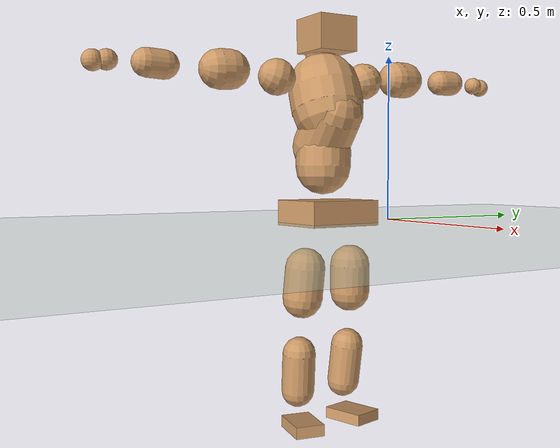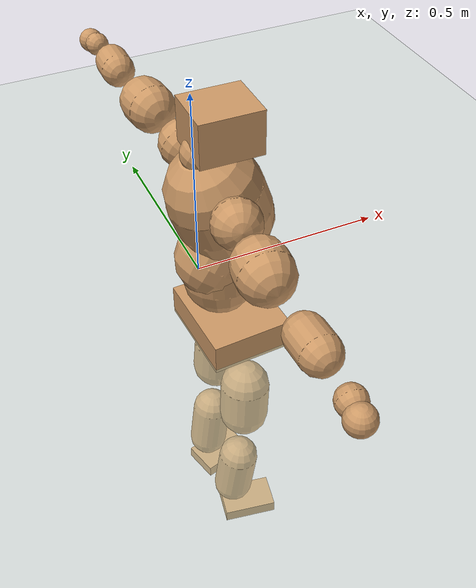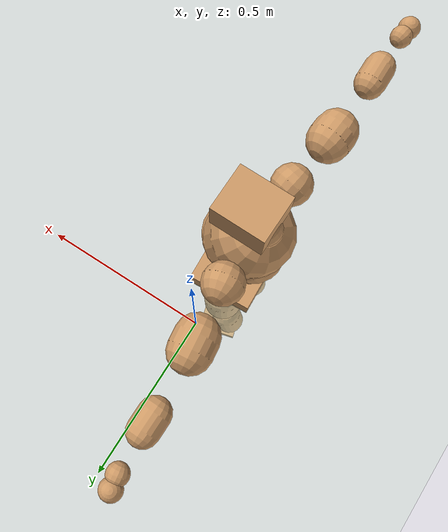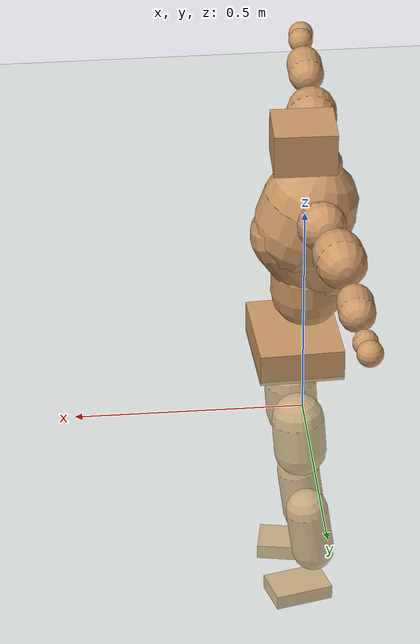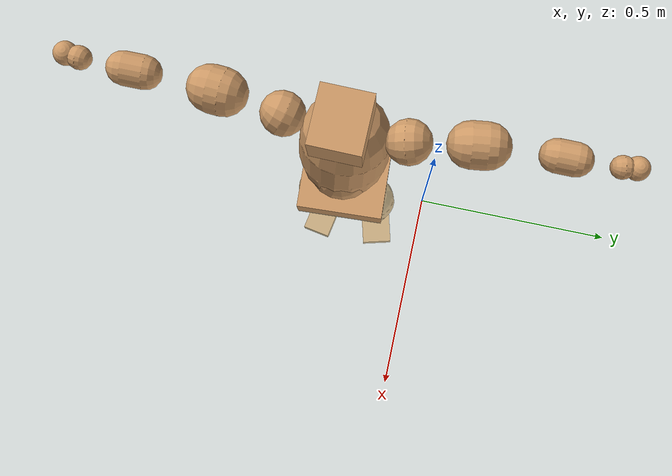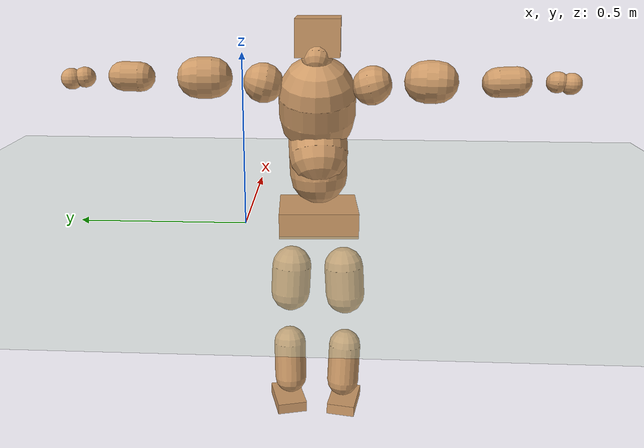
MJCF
<mujoco model="humanoid">
  <compiler coordinate="local" angle="radian"/>
  <default>
    <joint damping="0.0" armature="0.01" stiffness="0.0" limited="true"/>
    <geom conaffinity="1" condim="3" contype="7" margin="0.001" rgba="0.8 0.6 .4 1"/>
  </default>
  <asset>
    <texture type="skybox" builtin="gradient" rgb1=".4 .5 .6" rgb2="0 0 0" width="100" height="100"/>
    <texture builtin="flat" height="1278" mark="cross" markrgb="1 1 1" name="texgeom" random="0.01" rgb1="0.8 0.6 0.4" rgb2="0.8 0.6 0.4" type="cube" width="127"/>
    <texture builtin="checker" height="100" name="texplane" rgb1="0 0 0" rgb2="0.8 0.8 0.8" type="2d" width="100"/>
    <material name="MatPlane" reflectance="0.5" shininess="1" specular="1" texrepeat="60 60" texture="texplane"/>
    <material name="geom" texture="texgeom" texuniform="true"/>
  </asset>
  <worldbody>
    <light cutoff="100" diffuse="1 1 1" dir="-0 0 -1.3" directional="true" exponent="1" pos="0 0 1.3" specular=".1 .1 .1"/>
    <geom conaffinity="1" condim="3" name="floor" pos="0 0 0" rgba="0.8 0.9 0.8 1" size="100 100 .2" type="plane" material="MatPlane"/>
    <body name="Pelvis" pos="-0.0026 -0.2161 0.0394">
      <freejoint name="Pelvis"/>
      <geom type="box" contype="1" conaffinity="1" density="5359.374822" pos="-0.0040 -0.0002 -0.0118" size="0.0947 0.1139 0.0372" quat="0.9997 0.0000 0.0000 0.0249" name="Pelvis"/>
      <body name="L_Hip" pos="0.0016 0.0744 -0.0817">
        <joint name="L_Hip_x" type="hinge" pos="0 0 0" axis="1 0 0" stiffness="1600" damping="160" armature="0.02" range="-180.0000 180.0000"/>
        <joint name="L_Hip_y" type="hinge" pos="0 0 0" axis="0 1 0" stiffness="1600" damping="160" armature="0.02" range="-180.0000 180.0000"/>
        <joint name="L_Hip_z" type="hinge" pos="0 0 0" axis="0 0 1" stiffness="1600" damping="160" armature="0.02" range="-180.0000 180.0000"/>
        <geom type="capsule" contype="1" conaffinity="1" density="2040.816327" size="0.0592" fromto="-0.0061 0.0038 -0.0889 -0.0119 0.0073 -0.1716" name="L_Hip"/>
        <body name="L_Knee" pos="-0.018 0.0111 -0.2604">
          <joint name="L_Knee_x" type="hinge" pos="0 0 0" axis="1 0 0" stiffness="1600" damping="160" armature="0.02" range="-180.0000 180.0000"/>
          <joint name="L_Knee_y" type="hinge" pos="0 0 0" axis="0 1 0" stiffness="1600" damping="160" armature="0.02" range="-180.0000 180.0000"/>
          <joint name="L_Knee_z" type="hinge" pos="0 0 0" axis="0 0 1" stiffness="1600" damping="160" armature="0.02" range="-180.0000 180.0000"/>
          <geom type="capsule" contype="1" conaffinity="1" density="1234.567901" size="0.0486" fromto="-0.0109 -0.0023 -0.0778 -0.0268 -0.0058 -0.1918" name="L_Knee"/>
          <body name="L_Ankle" pos="-0.0376 -0.0081 -0.2697">
            <joint name="L_Ankle_x" type="hinge" pos="0 0 0" axis="1 0 0" stiffness="1600" damping="160" armature="0.02" range="-180.0000 180.0000"/>
            <joint name="L_Ankle_y" type="hinge" pos="0 0 0" axis="0 1 0" stiffness="1600" damping="160" armature="0.02" range="-180.0000 180.0000"/>
            <joint name="L_Ankle_z" type="hinge" pos="0 0 0" axis="0 0 1" stiffness="1600" damping="160" armature="0.02" range="-180.0000 180.0000"/>
            <geom type="box" contype="1" conaffinity="1" density="999.999959" pos="0.0456 0.0119 -0.0207" size="0.0665 0.0457 0.0165" quat="0.9919 0.0000 0.0000 0.1273" name="L_Ankle"/>
            <body name="L_Toe" pos="0.0911 0.0238 -0.0415">
              <joint name="L_Toe_x" type="hinge" pos="0 0 0" axis="1 0 0" stiffness="1000" damping="100" armature="0.02" range="-180.0000 180.0000"/>
              <joint name="L_Toe_y" type="hinge" pos="0 0 0" axis="0 1 0" stiffness="1000" damping="100" armature="0.02" range="-180.0000 180.0000"/>
              <joint name="L_Toe_z" type="hinge" pos="0 0 0" axis="0 0 1" stiffness="1000" damping="100" armature="0.02" range="-180.0000 180.0000"/>
              <geom type="box" contype="1" conaffinity="1" density="6912097.036662" pos="0.0000 0.0000 0.0211" size="0.001 0.0023 0.0008" quat="0.9909 0.0000 0.0000 0.1347" name="L_Toe"/>
            </body>
          </body>
        </body>
      </body>
      <body name="R_Hip" pos="0.0034 -0.0736 -0.083">
        <joint name="R_Hip_x" type="hinge" pos="0 0 0" axis="1 0 0" stiffness="1600" damping="160" armature="0.02" range="-180.0000 180.0000"/>
        <joint name="R_Hip_y" type="hinge" pos="0 0 0" axis="0 1 0" stiffness="1600" damping="160" armature="0.02" range="-180.0000 180.0000"/>
        <joint name="R_Hip_z" type="hinge" pos="0 0 0" axis="0 0 1" stiffness="1600" damping="160" armature="0.02" range="-180.0000 180.0000"/>
        <geom type="capsule" contype="1" conaffinity="1" density="2040.816327" size="0.0587" fromto="-0.0063 -0.0057 -0.0883 -0.0126 -0.0114 -0.1776" name="R_Hip"/>
        <body name="R_Knee" pos="-0.0189 -0.017 -0.2659">
          <joint name="R_Knee_x" type="hinge" pos="0 0 0" axis="1 0 0" stiffness="1600" damping="160" armature="0.02" range="-180.0000 180.0000"/>
          <joint name="R_Knee_y" type="hinge" pos="0 0 0" axis="0 1 0" stiffness="1600" damping="160" armature="0.02" range="-180.0000 180.0000"/>
          <joint name="R_Knee_z" type="hinge" pos="0 0 0" axis="0 0 1" stiffness="1600" damping="160" armature="0.02" range="-180.0000 180.0000"/>
          <geom type="capsule" contype="1" conaffinity="1" density="1234.567901" size="0.0487" fromto="-0.0101 0.0028 -0.0780 -0.0250 0.0069 -0.1929" name="R_Knee"/>
          <body name="R_Ankle" pos="-0.0352 0.0096 -0.271">
            <joint name="R_Ankle_x" type="hinge" pos="0 0 0" axis="1 0 0" stiffness="1600" damping="160" armature="0.02" range="-180.0000 180.0000"/>
            <joint name="R_Ankle_y" type="hinge" pos="0 0 0" axis="0 1 0" stiffness="1600" damping="160" armature="0.02" range="-180.0000 180.0000"/>
            <joint name="R_Ankle_z" type="hinge" pos="0 0 0" axis="0 0 1" stiffness="1600" damping="160" armature="0.02" range="-180.0000 180.0000"/>
            <geom type="box" contype="1" conaffinity="1" density="1000.000016" pos="0.0477 -0.0087 -0.0185" size="0.0667 0.0428 0.0171" quat="0.9959 0.0000 0.0000 -0.0904" name="R_Ankle"/>
            <body name="R_Toe" pos="0.0953 -0.0174 -0.0369">
              <joint name="R_Toe_x" type="hinge" pos="0 0 0" axis="1 0 0" stiffness="1000" damping="100" armature="0.02" range="-180.0000 180.0000"/>
              <joint name="R_Toe_y" type="hinge" pos="0 0 0" axis="0 1 0" stiffness="1000" damping="100" armature="0.02" range="-180.0000 180.0000"/>
              <joint name="R_Toe_z" type="hinge" pos="0 0 0" axis="0 0 1" stiffness="1000" damping="100" armature="0.02" range="-180.0000 180.0000"/>
              <geom type="box" contype="1" conaffinity="1" density="6938292.13253" pos="0.0000 0.0000 0.0208" size="0.001 0.0023 0.001" quat="0.9969 0.0000 0.0000 -0.0786" name="R_Toe"/>
            </body>
          </body>
        </body>
      </body>
      <body name="Torso" pos="-0.0292 -0.002 0.0942">
        <joint name="Torso_x" type="hinge" pos="0 0 0" axis="1 0 0" stiffness="2000" damping="200" armature="0.02" range="-180.0000 180.0000"/>
        <joint name="Torso_y" type="hinge" pos="0 0 0" axis="0 1 0" stiffness="2000" damping="200" armature="0.02" range="-180.0000 180.0000"/>
        <joint name="Torso_z" type="hinge" pos="0 0 0" axis="0 0 1" stiffness="2000" damping="200" armature="0.02" range="-180.0000 180.0000"/>
        <geom type="capsule" contype="1" conaffinity="1" density="2040.816327" size="0.0821" fromto="-0.0009 0.0026 0.0820 -0.0003 0.0009 0.0297" name="Torso"/>
        <body name="Spine" pos="-0.0012 0.0036 0.1118">
          <joint name="Spine_x" type="hinge" pos="0 0 0" axis="1 0 0" stiffness="2000" damping="200" armature="0.02" range="-180.0000 180.0000"/>
          <joint name="Spine_y" type="hinge" pos="0 0 0" axis="0 1 0" stiffness="2000" damping="200" armature="0.02" range="-180.0000 180.0000"/>
          <joint name="Spine_z" type="hinge" pos="0 0 0" axis="0 0 1" stiffness="2000" damping="200" armature="0.02" range="-180.0000 180.0000"/>
          <geom type="capsule" contype="1" conaffinity="1" density="2040.816327" size="0.0836" fromto="0.0468 0.0053 0.0691 -0.0157 -0.0018 -0.0232" name="Spine"/>
          <body name="Chest" pos="0.0311 0.0035 0.0459">
            <joint name="Chest_x" type="hinge" pos="0 0 0" axis="1 0 0" stiffness="2000" damping="200" armature="0.02" range="-180.0000 180.0000"/>
            <joint name="Chest_y" type="hinge" pos="0 0 0" axis="0 1 0" stiffness="2000" damping="200" armature="0.02" range="-180.0000 180.0000"/>
            <joint name="Chest_z" type="hinge" pos="0 0 0" axis="0 0 1" stiffness="2000" damping="200" armature="0.02" range="-180.0000 180.0000"/>
            <geom type="capsule" contype="1" conaffinity="1" density="2040.816327" size="0.1072" fromto="-0.0346 0.0003 0.1015 -0.0136 0.0001 0.0398" name="Chest"/>
            <body name="Neck" pos="-0.0706 0.0016 0.1905">
              <joint name="Neck_x" type="hinge" pos="0 0 0" axis="1 0 0" stiffness="1000" damping="100" armature="0.02" range="-180.0000 180.0000"/>
              <joint name="Neck_y" type="hinge" pos="0 0 0" axis="0 1 0" stiffness="1000" damping="100" armature="0.02" range="-180.0000 180.0000"/>
              <joint name="Neck_z" type="hinge" pos="0 0 0" axis="0 0 1" stiffness="1000" damping="100" armature="0.02" range="-180.0000 180.0000"/>
              <geom type="capsule" contype="1" conaffinity="1" density="1000" size="0.0418" fromto="0.0262 -0.0019 0.0326 0.0084 -0.0006 0.0104" name="Neck"/>
              <body name="Head" pos="0.0345 -0.0025 0.043">
                <joint name="Head_x" type="hinge" pos="0 0 0" axis="1 0 0" stiffness="1000" damping="100" armature="0.02" range="-180.0000 180.0000"/>
                <joint name="Head_y" type="hinge" pos="0 0 0" axis="0 1 0" stiffness="1000" damping="100" armature="0.02" range="-180.0000 180.0000"/>
                <joint name="Head_z" type="hinge" pos="0 0 0" axis="0 0 1" stiffness="1000" damping="100" armature="0.02" range="-180.0000 180.0000"/>
                <geom type="box" contype="1" conaffinity="1" density="2250.00011" pos="0.0183 -0.0003 0.0225" size="0.0699 0.0609 0.0504" quat="1.0000 0.0000 0.0000 -0.0072" name="Head"/>
              </body>
            </body>
            <body name="L_Thorax" pos="-0.0344 0.0948 0.1189">
              <joint name="L_Thorax_x" type="hinge" pos="0 0 0" axis="1 0 0" stiffness="1000" damping="100" armature="0.02" range="-180.0000 180.0000"/>
              <joint name="L_Thorax_y" type="hinge" pos="0 0 0" axis="0 1 0" stiffness="1000" damping="100" armature="0.02" range="-180.0000 180.0000"/>
              <joint name="L_Thorax_z" type="hinge" pos="0 0 0" axis="0 0 1" stiffness="1000" damping="100" armature="0.02" range="-180.0000 180.0000"/>
              <geom type="capsule" contype="1" conaffinity="1" density="1000" size="0.0546" fromto="-0.0082 0.0518 0.0141 -0.0085 0.0537 0.0146" name="L_Thorax"/>
              <body name="L_Shoulder" pos="-0.0166 0.1055 0.0287">
                <joint name="L_Shoulder_x" type="hinge" pos="0 0 0" axis="1 0 0" stiffness="1000" damping="100" armature="0.02" range="-720.0000 720.0000"/>
                <joint name="L_Shoulder_y" type="hinge" pos="0 0 0" axis="0 1 0" stiffness="1000" damping="100" armature="0.02" range="-720.0000 720.0000"/>
                <joint name="L_Shoulder_z" type="hinge" pos="0 0 0" axis="0 0 1" stiffness="1000" damping="100" armature="0.02" range="-720.0000 720.0000"/>
                <geom type="capsule" contype="1" conaffinity="1" density="1000" size="0.0558" fromto="-0.0102 0.0852 0.0011 -0.0148 0.1237 0.0016" name="L_Shoulder"/>
                <body name="L_Elbow" pos="-0.0251 0.2089 0.0027">
                  <joint name="L_Elbow_x" type="hinge" pos="0 0 0" axis="1 0 0" stiffness="1000" damping="100" armature="0.02" range="-720.0000 720.0000"/>
                  <joint name="L_Elbow_y" type="hinge" pos="0 0 0" axis="0 1 0" stiffness="1000" damping="100" armature="0.02" range="-720.0000 720.0000"/>
                  <joint name="L_Elbow_z" type="hinge" pos="0 0 0" axis="0 0 1" stiffness="1000" damping="100" armature="0.02" range="-720.0000 720.0000"/>
                  <geom type="capsule" contype="1" conaffinity="1" density="1000" size="0.04" fromto="0.0008 0.0699 0.0014 0.0013 0.1161 0.0024" name="L_Elbow"/>
                  <body name="L_Wrist" pos="0.002 0.1861 0.0038">
                    <joint name="L_Wrist_x" type="hinge" pos="0 0 0" axis="1 0 0" stiffness="600" damping="60" armature="0.02" range="-180.0000 180.0000"/>
                    <joint name="L_Wrist_y" type="hinge" pos="0 0 0" axis="0 1 0" stiffness="600" damping="60" armature="0.02" range="-180.0000 180.0000"/>
                    <joint name="L_Wrist_z" type="hinge" pos="0 0 0" axis="0 0 1" stiffness="600" damping="60" armature="0.02" range="-180.0000 180.0000"/>
                    <geom type="capsule" contype="1" conaffinity="1" density="1000" size="0.0278" fromto="-0.0052 0.0341 -0.0039 -0.0055 0.0361 -0.0041" name="L_Wrist"/>
                    <body name="L_Hand" pos="-0.0107 0.0701 -0.008">
                      <joint name="L_Hand_x" type="hinge" pos="0 0 0" axis="1 0 0" stiffness="600" damping="60" armature="0.02" range="-180.0000 180.0000"/>
                      <joint name="L_Hand_y" type="hinge" pos="0 0 0" axis="0 1 0" stiffness="600" damping="60" armature="0.02" range="-180.0000 180.0000"/>
                      <joint name="L_Hand_z" type="hinge" pos="0 0 0" axis="0 0 1" stiffness="600" damping="60" armature="0.02" range="-180.0000 180.0000"/>
                      <geom type="sphere" contype="1" conaffinity="1" density="1000" size="0.0287" pos="0.0000 0.0000 0.0000" name="L_Hand"/>
                    </body>
                  </body>
                </body>
              </body>
            </body>
            <body name="R_Thorax" pos="-0.0396 -0.0952 0.1143">
              <joint name="R_Thorax_x" type="hinge" pos="0 0 0" axis="1 0 0" stiffness="1000" damping="100" armature="0.02" range="-180.0000 180.0000"/>
              <joint name="R_Thorax_y" type="hinge" pos="0 0 0" axis="0 1 0" stiffness="1000" damping="100" armature="0.02" range="-180.0000 180.0000"/>
              <joint name="R_Thorax_z" type="hinge" pos="0 0 0" axis="0 0 1" stiffness="1000" damping="100" armature="0.02" range="-180.0000 180.0000"/>
              <geom type="capsule" contype="1" conaffinity="1" density="1000" size="0.0533" fromto="-0.0112 -0.0533 0.0149 -0.0116 -0.0552 0.0155" name="R_Thorax"/>
              <body name="R_Shoulder" pos="-0.0228 -0.1085 0.0304">
                <joint name="R_Shoulder_x" type="hinge" pos="0 0 0" axis="1 0 0" stiffness="1000" damping="100" armature="0.02" range="-720.0000 720.0000"/>
                <joint name="R_Shoulder_y" type="hinge" pos="0 0 0" axis="0 1 0" stiffness="1000" damping="100" armature="0.02" range="-720.0000 720.0000"/>
                <joint name="R_Shoulder_z" type="hinge" pos="0 0 0" axis="0 0 1" stiffness="1000" damping="100" armature="0.02" range="-720.0000 720.0000"/>
                <geom type="capsule" contype="1" conaffinity="1" density="1000" size="0.057" fromto="-0.0067 -0.0868 -0.0016 -0.0091 -0.1175 -0.0022" name="R_Shoulder"/>
                <body name="R_Elbow" pos="-0.0157 -0.2043 -0.0038">
                  <joint name="R_Elbow_x" type="hinge" pos="0 0 0" axis="1 0 0" stiffness="1000" damping="100" armature="0.02" range="-720.0000 720.0000"/>
                  <joint name="R_Elbow_y" type="hinge" pos="0 0 0" axis="0 1 0" stiffness="1000" damping="100" armature="0.02" range="-720.0000 720.0000"/>
                  <joint name="R_Elbow_z" type="hinge" pos="0 0 0" axis="0 0 1" stiffness="1000" damping="100" armature="0.02" range="-720.0000 720.0000"/>
                  <geom type="capsule" contype="1" conaffinity="1" density="1000" size="0.0402" fromto="0.0008 -0.0702 0.0031 0.0013 -0.1202 0.0053" name="R_Elbow"/>
                  <body name="R_Wrist" pos="0.0021 -0.1904 0.0084">
                    <joint name="R_Wrist_x" type="hinge" pos="0 0 0" axis="1 0 0" stiffness="600" damping="60" armature="0.02" range="-180.0000 180.0000"/>
                    <joint name="R_Wrist_y" type="hinge" pos="0 0 0" axis="0 1 0" stiffness="600" damping="60" armature="0.02" range="-180.0000 180.0000"/>
                    <joint name="R_Wrist_z" type="hinge" pos="0 0 0" axis="0 0 1" stiffness="600" damping="60" armature="0.02" range="-180.0000 180.0000"/>
                    <geom type="capsule" contype="1" conaffinity="1" density="1000" size="0.0282" fromto="-0.0043 -0.0340 -0.0031 -0.0046 -0.0360 -0.0032" name="R_Wrist"/>
                    <body name="R_Hand" pos="-0.0089 -0.07 -0.0063">
                      <joint name="R_Hand_x" type="hinge" pos="0 0 0" axis="1 0 0" stiffness="600" damping="60" armature="0.02" range="-180.0000 180.0000"/>
                      <joint name="R_Hand_y" type="hinge" pos="0 0 0" axis="0 1 0" stiffness="600" damping="60" armature="0.02" range="-180.0000 180.0000"/>
                      <joint name="R_Hand_z" type="hinge" pos="0 0 0" axis="0 0 1" stiffness="600" damping="60" armature="0.02" range="-180.0000 180.0000"/>
                      <geom type="sphere" contype="1" conaffinity="1" density="1000" size="0.0286" pos="0.0000 0.0000 0.0000" name="R_Hand"/>
                    </body>
                  </body>
                </body>
              </body>
            </body>
          </body>
        </body>
      </body>
    </body>
  </worldbody>
  <actuator>
    <motor name="L_Hip_x" joint="L_Hip_x" gear="500"/>
    <motor name="L_Hip_y" joint="L_Hip_y" gear="500"/>
    <motor name="L_Hip_z" joint="L_Hip_z" gear="500"/>
    <motor name="L_Knee_x" joint="L_Knee_x" gear="500"/>
    <motor name="L_Knee_y" joint="L_Knee_y" gear="500"/>
    <motor name="L_Knee_z" joint="L_Knee_z" gear="500"/>
    <motor name="L_Ankle_x" joint="L_Ankle_x" gear="500"/>
    <motor name="L_Ankle_y" joint="L_Ankle_y" gear="500"/>
    <motor name="L_Ankle_z" joint="L_Ankle_z" gear="500"/>
    <motor name="L_Toe_x" joint="L_Toe_x" gear="500"/>
    <motor name="L_Toe_y" joint="L_Toe_y" gear="500"/>
    <motor name="L_Toe_z" joint="L_Toe_z" gear="500"/>
    <motor name="R_Hip_x" joint="R_Hip_x" gear="500"/>
    <motor name="R_Hip_y" joint="R_Hip_y" gear="500"/>
    <motor name="R_Hip_z" joint="R_Hip_z" gear="500"/>
    <motor name="R_Knee_x" joint="R_Knee_x" gear="500"/>
    <motor name="R_Knee_y" joint="R_Knee_y" gear="500"/>
    <motor name="R_Knee_z" joint="R_Knee_z" gear="500"/>
    <motor name="R_Ankle_x" joint="R_Ankle_x" gear="500"/>
    <motor name="R_Ankle_y" joint="R_Ankle_y" gear="500"/>
    <motor name="R_Ankle_z" joint="R_Ankle_z" gear="500"/>
    <motor name="R_Toe_x" joint="R_Toe_x" gear="500"/>
    <motor name="R_Toe_y" joint="R_Toe_y" gear="500"/>
    <motor name="R_Toe_z" joint="R_Toe_z" gear="500"/>
    <motor name="Torso_x" joint="Torso_x" gear="500"/>
    <motor name="Torso_y" joint="Torso_y" gear="500"/>
    <motor name="Torso_z" joint="Torso_z" gear="500"/>
    <motor name="Spine_x" joint="Spine_x" gear="500"/>
    <motor name="Spine_y" joint="Spine_y" gear="500"/>
    <motor name="Spine_z" joint="Spine_z" gear="500"/>
    <motor name="Chest_x" joint="Chest_x" gear="500"/>
    <motor name="Chest_y" joint="Chest_y" gear="500"/>
    <motor name="Chest_z" joint="Chest_z" gear="500"/>
    <motor name="Neck_x" joint="Neck_x" gear="500"/>
    <motor name="Neck_y" joint="Neck_y" gear="500"/>
    <motor name="Neck_z" joint="Neck_z" gear="500"/>
    <motor name="Head_x" joint="Head_x" gear="500"/>
    <motor name="Head_y" joint="Head_y" gear="500"/>
    <motor name="Head_z" joint="Head_z" gear="500"/>
    <motor name="L_Thorax_x" joint="L_Thorax_x" gear="500"/>
    <motor name="L_Thorax_y" joint="L_Thorax_y" gear="500"/>
    <motor name="L_Thorax_z" joint="L_Thorax_z" gear="500"/>
    <motor name="L_Shoulder_x" joint="L_Shoulder_x" gear="500"/>
    <motor name="L_Shoulder_y" joint="L_Shoulder_y" gear="500"/>
    <motor name="L_Shoulder_z" joint="L_Shoulder_z" gear="500"/>
    <motor name="L_Elbow_x" joint="L_Elbow_x" gear="500"/>
    <motor name="L_Elbow_y" joint="L_Elbow_y" gear="500"/>
    <motor name="L_Elbow_z" joint="L_Elbow_z" gear="500"/>
    <motor name="L_Wrist_x" joint="L_Wrist_x" gear="500"/>
    <motor name="L_Wrist_y" joint="L_Wrist_y" gear="500"/>
    <motor name="L_Wrist_z" joint="L_Wrist_z" gear="500"/>
    <motor name="L_Hand_x" joint="L_Hand_x" gear="500"/>
    <motor name="L_Hand_y" joint="L_Hand_y" gear="500"/>
    <motor name="L_Hand_z" joint="L_Hand_z" gear="500"/>
    <motor name="R_Thorax_x" joint="R_Thorax_x" gear="500"/>
    <motor name="R_Thorax_y" joint="R_Thorax_y" gear="500"/>
    <motor name="R_Thorax_z" joint="R_Thorax_z" gear="500"/>
    <motor name="R_Shoulder_x" joint="R_Shoulder_x" gear="500"/>
    <motor name="R_Shoulder_y" joint="R_Shoulder_y" gear="500"/>
    <motor name="R_Shoulder_z" joint="R_Shoulder_z" gear="500"/>
    <motor name="R_Elbow_x" joint="R_Elbow_x" gear="500"/>
    <motor name="R_Elbow_y" joint="R_Elbow_y" gear="500"/>
    <motor name="R_Elbow_z" joint="R_Elbow_z" gear="500"/>
    <motor name="R_Wrist_x" joint="R_Wrist_x" gear="500"/>
    <motor name="R_Wrist_y" joint="R_Wrist_y" gear="500"/>
    <motor name="R_Wrist_z" joint="R_Wrist_z" gear="500"/>
    <motor name="R_Hand_x" joint="R_Hand_x" gear="500"/>
    <motor name="R_Hand_y" joint="R_Hand_y" gear="500"/>
    <motor name="R_Hand_z" joint="R_Hand_z" gear="500"/>
  </actuator>
  <contact>
    <exclude body1="Torso" body2="Chest"/>
    <exclude body1="Head" body2="Chest"/>
    <exclude body1="R_Knee" body2="R_Toe"/>
    <exclude body1="R_Knee" body2="L_Ankle"/>
    <exclude body1="R_Knee" body2="L_Toe"/>
    <exclude body1="L_Knee" body2="L_Toe"/>
    <exclude body1="L_Knee" body2="R_Ankle"/>
    <exclude body1="L_Knee" body2="R_Toe"/>
    <exclude body1="L_Shoulder" body2="Chest"/>
    <exclude body1="R_Shoulder" body2="Chest"/>
  </contact>
  <sensor/>
  <size njmax="700" nconmax="700"/>
</mujoco>
